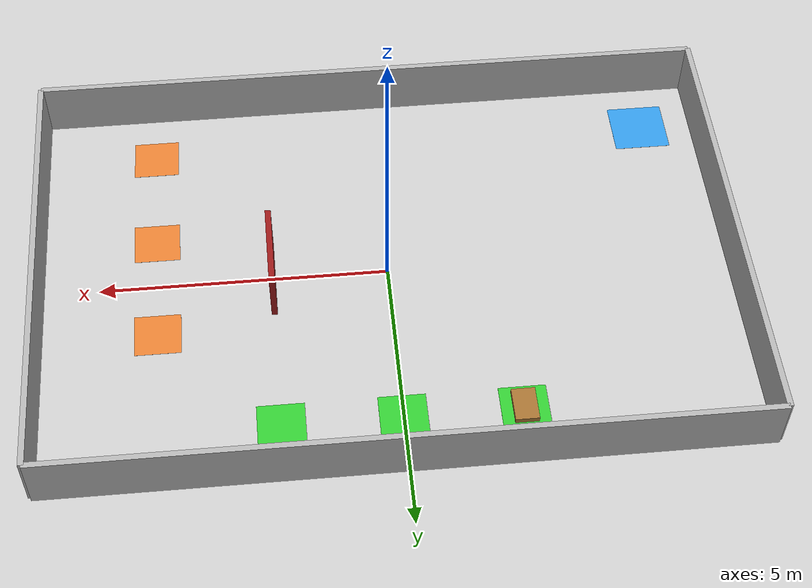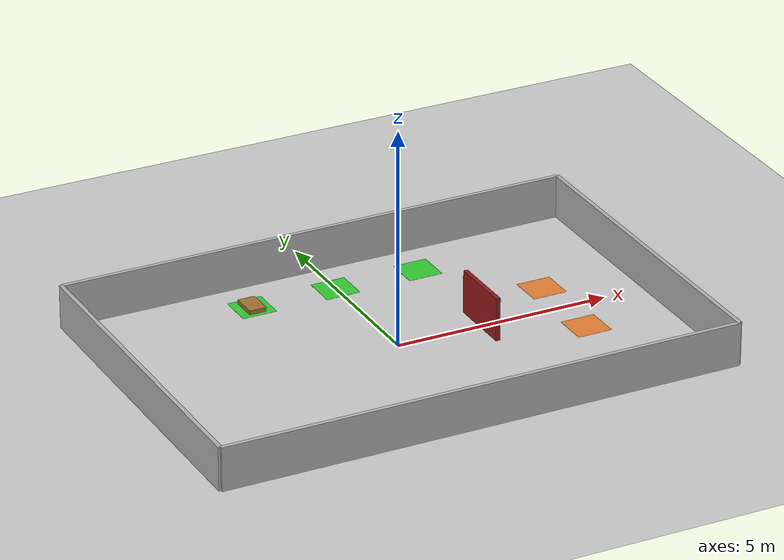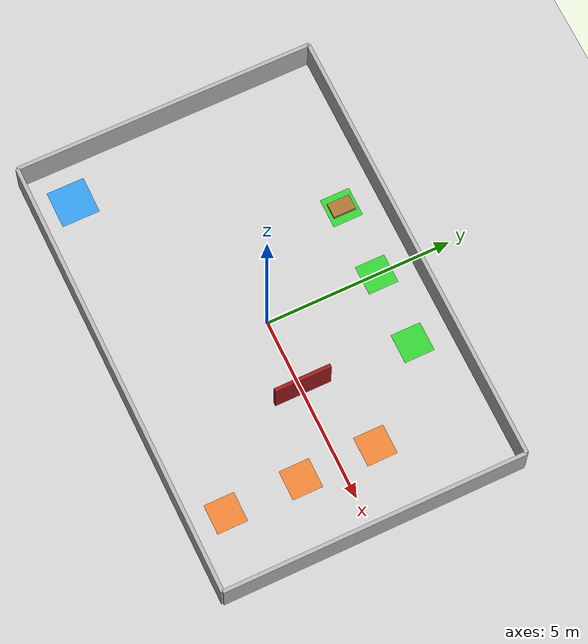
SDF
<?xml version="1.0" ?>
<sdf version="1.7">
  <world name="teknofest_saha">

    <include><uri>model://sun</uri></include>
    <include><uri>model://ground_plane</uri></include>

    <gravity>0 0 -9.81</gravity>
    <physics type="ode"><max_step_size>0.005</max_step_size><real_time_factor>1.0</real_time_factor></physics>

    <!-- Çevre duvarları -->
    <model name="wall_north"><static>true</static><pose>0 4 0.5 0 0 0</pose>
      <link name="l"><collision name="c"><geometry><box><size>12 0.1 1.0</size></box></geometry></collision>
      <visual name="v"><geometry><box><size>12 0.1 1.0</size></box></geometry>
      <material><ambient>0.7 0.7 0.7 1</ambient></material></visual></link></model>
    <model name="wall_south"><static>true</static><pose>0 -4 0.5 0 0 0</pose>
      <link name="l"><collision name="c"><geometry><box><size>12 0.1 1.0</size></box></geometry></collision>
      <visual name="v"><geometry><box><size>12 0.1 1.0</size></box></geometry>
      <material><ambient>0.7 0.7 0.7 1</ambient></material></visual></link></model>
    <model name="wall_east"><static>true</static><pose>6 0 0.5 0 0 0</pose>
      <link name="l"><collision name="c"><geometry><box><size>0.1 8 1.0</size></box></geometry></collision>
      <visual name="v"><geometry><box><size>0.1 8 1.0</size></box></geometry>
      <material><ambient>0.7 0.7 0.7 1</ambient></material></visual></link></model>
    <model name="wall_west"><static>true</static><pose>-6 0 0.5 0 0 0</pose>
      <link name="l"><collision name="c"><geometry><box><size>0.1 8 1.0</size></box></geometry></collision>
      <visual name="v"><geometry><box><size>0.1 8 1.0</size></box></geometry>
      <material><ambient>0.7 0.7 0.7 1</ambient></material></visual></link></model>

    <!-- Bekleme / başlangıç alanı (home) -->
    <model name="zone_home"><static>true</static><pose>-5 -3 0.001 0 0 0</pose>
      <link name="l"><visual name="v"><geometry><box><size>1.0 1.0 0.002</size></box></geometry>
      <material><ambient>0.2 0.6 0.9 1</ambient></material></visual></link></model>

    <!-- Alma noktaları P1, P2, P3 -->
    <model name="zone_p1"><static>true</static><pose>-2 3 0.001 0 0 0</pose>
      <link name="l"><visual name="v"><geometry><box><size>0.8 0.8 0.002</size></box></geometry>
      <material><ambient>0.2 0.8 0.2 1</ambient></material></visual></link></model>
    <model name="zone_p2"><static>true</static><pose>0 3 0.001 0 0 0</pose>
      <link name="l"><visual name="v"><geometry><box><size>0.8 0.8 0.002</size></box></geometry>
      <material><ambient>0.2 0.8 0.2 1</ambient></material></visual></link></model>
    <model name="zone_p3"><static>true</static><pose>2 3 0.001 0 0 0</pose>
      <link name="l"><visual name="v"><geometry><box><size>0.8 0.8 0.002</size></box></geometry>
      <material><ambient>0.2 0.8 0.2 1</ambient></material></visual></link></model>

    <!-- Bırakma noktaları D1, D2, D3 (kapının diğer tarafında) -->
    <model name="zone_d1"><static>true</static><pose>4 1 0.001 0 0 0</pose>
      <link name="l"><visual name="v"><geometry><box><size>0.8 0.8 0.002</size></box></geometry>
      <material><ambient>0.9 0.5 0.2 1</ambient></material></visual></link></model>
    <model name="zone_d2"><static>true</static><pose>4 -1 0.001 0 0 0</pose>
      <link name="l"><visual name="v"><geometry><box><size>0.8 0.8 0.002</size></box></geometry>
      <material><ambient>0.9 0.5 0.2 1</ambient></material></visual></link></model>
    <model name="zone_d3"><static>true</static><pose>4 -3 0.001 0 0 0</pose>
      <link name="l"><visual name="v"><geometry><box><size>0.8 0.8 0.002</size></box></geometry>
      <material><ambient>0.9 0.5 0.2 1</ambient></material></visual></link></model>

    <!-- Kapı bölgesi q5 — bir engel kapı, default açık (görünmez ama çarpışabilir) -->
    <model name="door_q5">
      <pose>2 0 0.5 0 0 0</pose>
      <link name="leaf">
        <collision name="c"><geometry><box><size>0.1 1.5 1.0</size></box></geometry></collision>
        <visual name="v"><geometry><box><size>0.1 1.5 1.0</size></box></geometry>
        <material><ambient>0.6 0.1 0.1 1</ambient></material></visual>
      </link>
      <joint name="hinge" type="prismatic">
        <parent>world</parent><child>leaf</child>
        <axis><xyz>0 0 1</xyz><limit><lower>0</lower><upper>1.0</upper></limit></axis>
      </joint>
    </model>

    <!-- Örnek palet P1'in üstünde -->
    <model name="pallet_p1">
      <static>false</static>
      <pose>-2 3 0.05 0 0 0</pose>
      <link name="link">
        <inertial><mass value="2.0"/><inertia ixx="0.01" iyy="0.01" izz="0.01" ixy="0" ixz="0" iyz="0"/></inertial>
        <collision name="c"><geometry><box><size>0.4 0.6 0.1</size></box></geometry></collision>
        <visual name="v"><geometry><box><size>0.4 0.6 0.1</size></box></geometry>
        <material><ambient>0.65 0.45 0.20 1</ambient></material></visual>
      </link>
    </model>

  </world>
</sdf>
